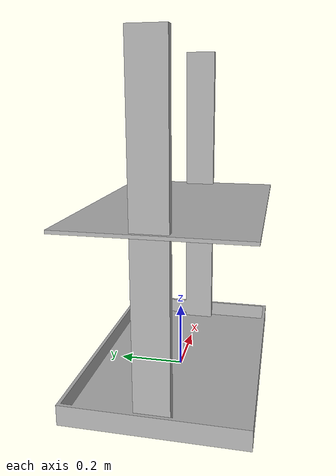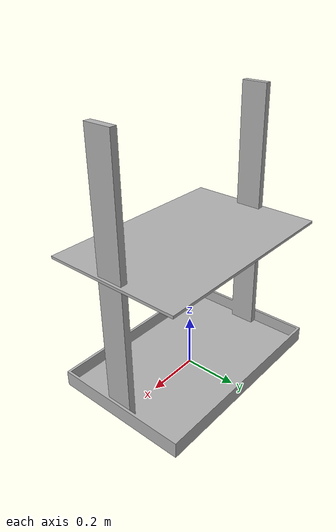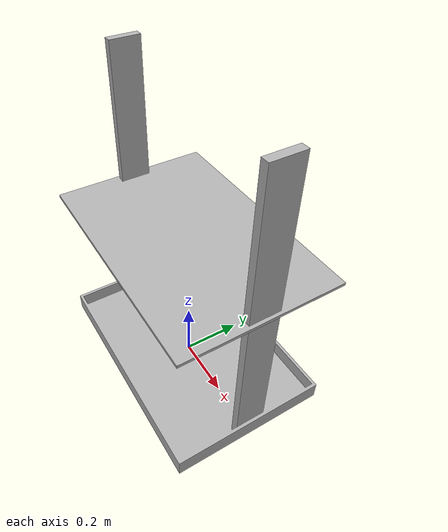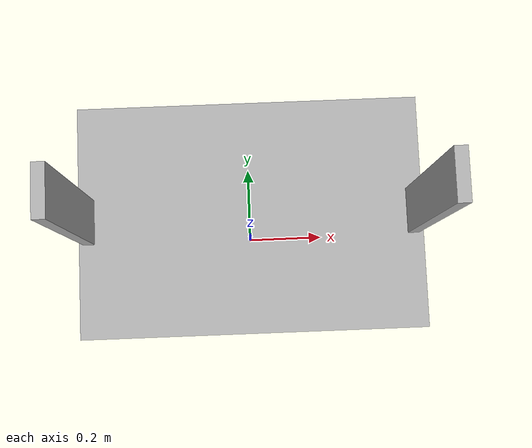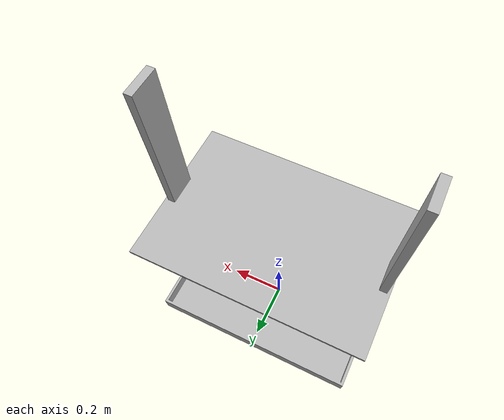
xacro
<?xml version="1.0" ?>
<robot name="bottom_slift" xmlns:xacro="http://www.ros.org/wiki/xacro">

<xacro:include filename="$(find bottom_slift_description)/urdf/materials.xacro" />
<xacro:include filename="$(find bottom_slift_description)/urdf/bottom_slift.trans"/>

<xacro:include filename="$(find bottom_slift_description)/gazebo/bottom_slift_materials.gazebo" />
<xacro:include filename="$(find bottom_slift_description)/gazebo/bottom_slift_physics.gazebo" />
<xacro:include filename="$(find bottom_slift_description)/gazebo/bottom_slift_plugins.gazebo" />

<link name="base_link"/>

<link name="lift_base_link">
  <inertial>
    <origin xyz="2.83276527708134e-16 1.133106110832536e-16 0.25447440140159655" rpy="0 0 0"/>
    <mass value="80.65090000000005"/>
    <inertia ixx="9.488195" iyy="15.850532" izz="8.793991" ixy="0.0" iyz="0.0" ixz="-0.0"/>
  </inertial>
  <visual>
    <origin xyz="0 0 0" rpy="0 0 0"/>
    <geometry>
      <mesh filename="package://bottom_slift_description/meshes/base_link.stl" scale="0.001 0.001 0.001"/>
    </geometry>
    <material name="silver"/>
  </visual>
  <collision>
    <origin xyz="0 0 0" rpy="0 0 0"/>
    <geometry>
      <mesh filename="package://bottom_slift_description/meshes/base_link.stl" scale="0.001 0.001 0.001"/>
    </geometry>
  </collision>
</link>

<link name="top_slift_1">
  <inertial>
    <origin xyz="0.37499999999999983 -0.04999999999999992 -0.07015039935343464" rpy="0 0 0"/>
    <mass value="31.03890000000002"/>
    <inertia ixx="0.708186" iyy="1.501634" izz="2.209303" ixy="0.0" iyz="-0.0" ixz="-0.0"/>
  </inertial>
  <visual>
    <origin xyz="0.375 -0.05 -0.535" rpy="0 0 0"/>
    <geometry>
      <mesh filename="package://bottom_slift_description/meshes/top_slift_1.stl" scale="0.001 0.001 0.001"/>
    </geometry>
    <material name="silver"/>
  </visual>
  <collision>
    <origin xyz="0.375 -0.05 -0.535" rpy="0 0 0"/>
    <geometry>
      <mesh filename="package://bottom_slift_description/meshes/top_slift_1.stl" scale="0.001 0.001 0.001"/>
    </geometry>
  </collision>
</link>

<joint name="base_joint" type="fixed">
  <origin xyz="0 0 0" rpy="0 0 0"/>
  <parent link="base_link"/>
  <child link="lift_base_link"/>
  <axis xyz="0 0 -1"/>
  <limit upper="0" lower="0" effort="10000" velocity="0"/>
</joint>

<joint name="slider1" type="prismatic">
  <origin xyz="-0.375 0.05 0.535" rpy="0 0 0"/>
  <parent link="lift_base_link"/>
  <child link="top_slift_1"/>
  <axis xyz="0.0 0.0 1.0"/>
  <limit upper="0" lower="0" effort="1" velocity="5"/>
</joint>

</robot>

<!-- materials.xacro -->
<robot name="bottom_slift" xmlns:xacro="http://www.ros.org/wiki/xacro" >

<material name="silver">
  <color rgba="0.700 0.700 0.700 1.000"/>
</material>

</robot>

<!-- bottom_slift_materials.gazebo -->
<robot name="bottom_slift" xmlns:xacro="http://www.ros.org/wiki/xacro" >

<xacro:property name="body_color" value="Gazebo/Silver" />

<gazebo reference="base_link">
  <material>${body_color}</material>
  </gazebo>

<gazebo reference="top_slift_1">
  <material>${body_color}</material>
</gazebo>

</robot>
